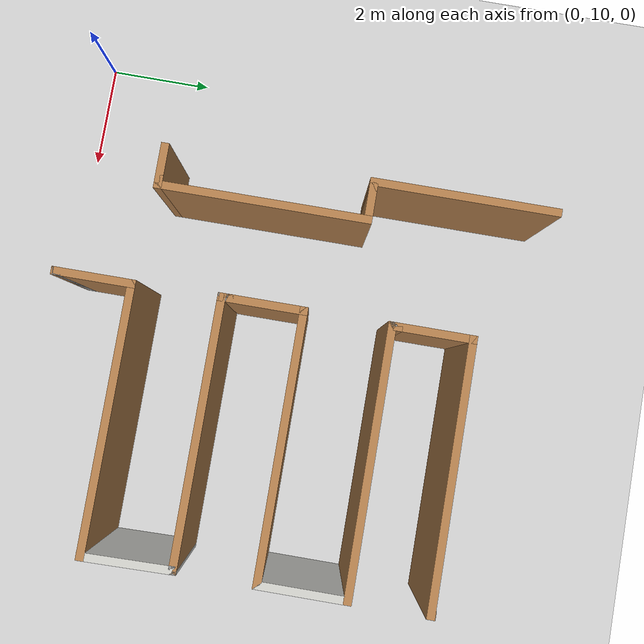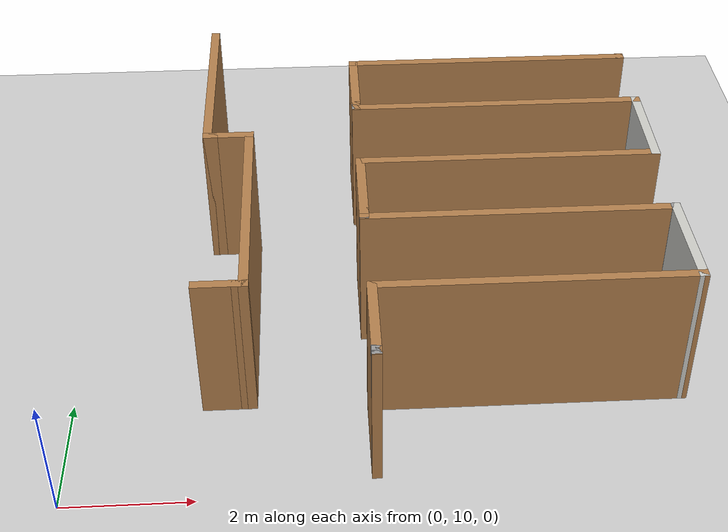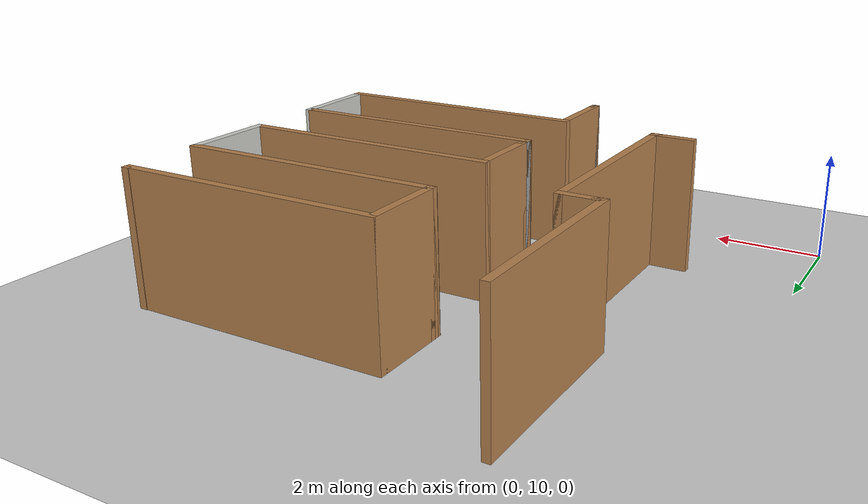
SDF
<sdf version="1.6">
 <world name="default">
  <model name="ground_plane">
   <static>1</static>
   <link name="link">
    <collision name="collision">
     <geometry><plane><normal>0 0 1</normal><size>100 100</size></plane></geometry>
     <surface>
      <contact><collide_bitmask>65535</collide_bitmask></contact>
      <friction><ode><mu>100</mu><mu2>50</mu2></ode></friction>
     </surface>
    </collision>
    <visual name="visual">
     <cast_shadows>0</cast_shadows>
     <geometry><plane><normal>0 0 1</normal><size>100 100</size></plane></geometry>
     <material>
      <script><uri>file://media/materials/scripts/gazebo.material</uri><name>Gazebo/Grey</name></script>
     </material>
    </visual>
   </link>
  </model>
  <model name="ecst_lab_v2">
   <pose>2.38151 7.60499 0 0 -0 -1.57079</pose>
   <link name="Wall_1">
    <collision name="Wall_1_Collision">
     <geometry><box><size>5 0.15 2.5</size></box></geometry>
     <pose>0 0 1.25 0 -0 0</pose>
    </collision>
    <visual name="Wall_1_Visual">
     <pose>0 0 1.25 0 -0 0</pose>
     <geometry><box><size>5 0.15 2.5</size></box></geometry>
     <material>
      <script><uri>file://media/materials/scripts/gazebo.material</uri><name>Gazebo/Wood</name></script>
      <ambient>1 1 1 1</ambient>
     </material>
     <meta><layer>0</layer></meta>
    </visual>
    <pose>-4.16301 4.67727 0 0 -0 -1.5708</pose>
   </link>
   <link name="Wall_117">
    <collision name="Wall_117_Collision">
     <geometry><box><size>0.16 0.15 2.5</size></box></geometry>
     <pose>0 0 1.25 0 -0 0</pose>
    </collision>
    <visual name="Wall_117_Visual">
     <pose>0 0 1.25 0 -0 0</pose>
     <geometry><box><size>0.16 0.15 2.5</size></box></geometry>
     <material>
      <script><uri>file://media/materials/scripts/gazebo.material</uri><name>Gazebo/Wood</name></script>
      <ambient>1 1 1 1</ambient>
     </material>
     <meta><layer>0</layer></meta>
    </visual>
    <pose>-10.3485 7.06822 0 0 -0 0</pose>
   </link>
   <link name="Wall_118">
    <collision name="Wall_118_Collision">
     <geometry><box><size>5 0.15 2.5</size></box></geometry>
     <pose>0 0 1.25 0 -0 0</pose>
    </collision>
    <visual name="Wall_118_Visual">
     <pose>0 0 1.25 0 -0 0</pose>
     <geometry><box><size>5 0.15 2.5</size></box></geometry>
     <material>
      <script><uri>file://media/materials/scripts/gazebo.material</uri><name>Gazebo/Wood</name></script>
      <ambient>1 1 1 1</ambient>
     </material>
     <meta><layer>0</layer></meta>
    </visual>
    <pose>-10.3435 4.64322 0 0 -0 -1.5708</pose>
   </link>
   <link name="Wall_119">
    <collision name="Wall_119_Collision">
     <geometry><box><size>1.5 0.15 2.5</size></box></geometry>
     <pose>0 0 1.25 0 -0 0</pose>
    </collision>
    <visual name="Wall_119_Visual">
     <pose>0 0 1.25 0 -0 0</pose>
     <geometry><box><size>1.5 0.15 2.5</size></box></geometry>
     <material>
      <script><uri>file://media/materials/scripts/gazebo.material</uri><name>Gazebo/Wood</name></script>
      <ambient>1 1 1 1</ambient>
     </material>
     <meta><layer>0</layer></meta>
    </visual>
    <pose>-9.6685 2.21822 0 0 -0 0</pose>
   </link>
   <link name="Wall_120">
    <collision name="Wall_120_Collision">
     <geometry><box><size>0.25 0.15 2.5</size></box></geometry>
     <pose>0 0 1.25 0 -0 0</pose>
    </collision>
    <visual name="Wall_120_Visual">
     <pose>0 0 1.25 0 -0 0</pose>
     <geometry><box><size>0.25 0.15 2.5</size></box></geometry>
     <material>
      <script><uri>file://media/materials/scripts/gazebo.material</uri><name>Gazebo/Wood</name></script>
      <ambient>1 1 1 1</ambient>
     </material>
     <meta><layer>0</layer></meta>
    </visual>
    <pose>-8.9435 2.21822 0 0 -0 0</pose>
   </link>
   <link name="Wall_121">
    <collision name="Wall_121_Collision">
     <geometry><box><size>0.15 0.15 2.5</size></box></geometry>
     <pose>0 0 1.25 0 -0 0</pose>
    </collision>
    <visual name="Wall_121_Visual">
     <pose>0 0 1.25 0 -0 0</pose>
     <geometry><box><size>0.15 0.15 2.5</size></box></geometry>
     <material>
      <script><uri>file://media/materials/scripts/gazebo.material</uri><name>Gazebo/Grey</name></script>
      <ambient>1 1 1 1</ambient>
     </material>
     <meta><layer>0</layer></meta>
    </visual>
    <pose>-8.8935 2.21822 0 0 -0 0</pose>
   </link>
   <link name="Wall_122">
    <collision name="Wall_122_Collision">
     <geometry><box><size>0.16 0.15 2.5</size></box></geometry>
     <pose>0 0 1.25 0 -0 0</pose>
    </collision>
    <visual name="Wall_122_Visual">
     <pose>0 0 1.25 0 -0 0</pose>
     <geometry><box><size>0.16 0.15 2.5</size></box></geometry>
     <material>
      <script><uri>file://media/materials/scripts/gazebo.material</uri><name>Gazebo/Wood</name></script>
      <ambient>1 1 1 1</ambient>
     </material>
     <meta><layer>0</layer></meta>
    </visual>
    <pose>-8.8885 2.21822 0 0 -0 0</pose>
   </link>
   <link name="Wall_123">
    <collision name="Wall_123_Collision">
     <geometry><box><size>5 0.15 2.5</size></box></geometry>
     <pose>0 0 1.25 0 -0 0</pose>
    </collision>
    <visual name="Wall_123_Visual">
     <pose>0 0 1.25 0 -0 0</pose>
     <geometry><box><size>5 0.15 2.5</size></box></geometry>
     <material>
      <script><uri>file://media/materials/scripts/gazebo.material</uri><name>Gazebo/Wood</name></script>
      <ambient>1 1 1 1</ambient>
     </material>
     <meta><layer>0</layer></meta>
    </visual>
    <pose>-8.8835 4.64322 0 0 -0 1.5708</pose>
   </link>
   <link name="Wall_124">
    <collision name="Wall_124_Collision">
     <geometry><box><size>1.75 0.15 2.5</size></box></geometry>
     <pose>0 0 1.25 0 -0 0</pose>
    </collision>
    <visual name="Wall_124_Visual">
     <pose>0 0 1.25 0 -0 0</pose>
     <geometry><box><size>1.75 0.15 2.5</size></box></geometry>
     <material>
      <script><uri>file://media/materials/scripts/gazebo.material</uri><name>Gazebo/CeilingTiled</name></script>
      <ambient>1 1 1 1</ambient>
     </material>
     <meta><layer>0</layer></meta>
    </visual>
    <pose>-8.0835 7.06822 0 0 -0 0</pose>
   </link>
   <link name="Wall_125">
    <collision name="Wall_125_Collision">
     <geometry><box><size>5 0.15 2.5</size></box></geometry>
     <pose>0 0 1.25 0 -0 0</pose>
    </collision>
    <visual name="Wall_125_Visual">
     <pose>0 0 1.25 0 -0 0</pose>
     <geometry><box><size>5 0.15 2.5</size></box></geometry>
     <material>
      <script><uri>file://media/materials/scripts/gazebo.material</uri><name>Gazebo/Wood</name></script>
      <ambient>1 1 1 1</ambient>
     </material>
     <meta><layer>0</layer></meta>
    </visual>
    <pose>-7.2835 4.64322 0 0 -0 -1.5708</pose>
   </link>
   <link name="Wall_126">
    <collision name="Wall_126_Collision">
     <geometry><box><size>1.5 0.15 2.5</size></box></geometry>
     <pose>0 0 1.25 0 -0 0</pose>
    </collision>
    <visual name="Wall_126_Visual">
     <pose>0 0 1.25 0 -0 0</pose>
     <geometry><box><size>1.5 0.15 2.5</size></box></geometry>
     <material>
      <script><uri>file://media/materials/scripts/gazebo.material</uri><name>Gazebo/Wood</name></script>
      <ambient>1 1 1 1</ambient>
     </material>
     <meta><layer>0</layer></meta>
    </visual>
    <pose>-6.6085 2.21822 0 0 -0 0</pose>
   </link>
   <link name="Wall_127">
    <collision name="Wall_127_Collision">
     <geometry><box><size>0.25 0.15 2.5</size></box></geometry>
     <pose>0 0 1.25 0 -0 0</pose>
    </collision>
    <visual name="Wall_127_Visual">
     <pose>0 0 1.25 0 -0 0</pose>
     <geometry><box><size>0.25 0.15 2.5</size></box></geometry>
     <material>
      <script><uri>file://media/materials/scripts/gazebo.material</uri><name>Gazebo/Wood</name></script>
      <ambient>1 1 1 1</ambient>
     </material>
     <meta><layer>0</layer></meta>
    </visual>
    <pose>-5.8835 2.21822 0 0 -0 0</pose>
   </link>
   <link name="Wall_128">
    <collision name="Wall_128_Collision">
     <geometry><box><size>0.15 0.15 2.5</size></box></geometry>
     <pose>0 0 1.25 0 -0 0</pose>
    </collision>
    <visual name="Wall_128_Visual">
     <pose>0 0 1.25 0 -0 0</pose>
     <geometry><box><size>0.15 0.15 2.5</size></box></geometry>
     <material>
      <script><uri>file://media/materials/scripts/gazebo.material</uri><name>Gazebo/Grey</name></script>
      <ambient>1 1 1 1</ambient>
     </material>
     <meta><layer>0</layer></meta>
    </visual>
    <pose>-5.8335 2.21822 0 0 -0 0</pose>
   </link>
   <link name="Wall_129">
    <collision name="Wall_129_Collision">
     <geometry><box><size>0.16 0.15 2.5</size></box></geometry>
     <pose>0 0 1.25 0 -0 0</pose>
    </collision>
    <visual name="Wall_129_Visual">
     <pose>0 0 1.25 0 -0 0</pose>
     <geometry><box><size>0.16 0.15 2.5</size></box></geometry>
     <material>
      <script><uri>file://media/materials/scripts/gazebo.material</uri><name>Gazebo/Wood</name></script>
      <ambient>1 1 1 1</ambient>
     </material>
     <meta><layer>0</layer></meta>
    </visual>
    <pose>-5.8285 2.21822 0 0 -0 0</pose>
   </link>
   <link name="Wall_130">
    <collision name="Wall_130_Collision">
     <geometry><box><size>0.16 0.15 2.5</size></box></geometry>
     <pose>0 0 1.25 0 -0 0</pose>
    </collision>
    <visual name="Wall_130_Visual">
     <pose>0 0 1.25 0 -0 0</pose>
     <geometry><box><size>0.16 0.15 2.5</size></box></geometry>
     <material>
      <script><uri>file://media/materials/scripts/gazebo.material</uri><name>Gazebo/Grey</name></script>
      <ambient>1 1 1 1</ambient>
     </material>
     <meta><layer>0</layer></meta>
    </visual>
    <pose>-5.8185 2.21822 0 0 -0 0</pose>
   </link>
   <link name="Wall_131">
    <collision name="Wall_131_Collision">
     <geometry><box><size>0.16 0.15 2.5</size></box></geometry>
     <pose>0 0 1.25 0 -0 0</pose>
    </collision>
    <visual name="Wall_131_Visual">
     <pose>0 0 1.25 0 -0 0</pose>
     <geometry><box><size>0.16 0.15 2.5</size></box></geometry>
     <material>
      <script><uri>file://media/materials/scripts/gazebo.material</uri><name>Gazebo/Grey</name></script>
      <ambient>1 1 1 1</ambient>
     </material>
     <meta><layer>0</layer></meta>
    </visual>
    <pose>-5.8085 2.21822 0 0 -0 0</pose>
   </link>
   <link name="Wall_132">
    <collision name="Wall_132_Collision">
     <geometry><box><size>0.16 0.15 2.5</size></box></geometry>
     <pose>0 0 1.25 0 -0 0</pose>
    </collision>
    <visual name="Wall_132_Visual">
     <pose>0 0 1.25 0 -0 0</pose>
     <geometry><box><size>0.16 0.15 2.5</size></box></geometry>
     <material>
      <script><uri>file://media/materials/scripts/gazebo.material</uri><name>Gazebo/Wood</name></script>
      <ambient>1 1 1 1</ambient>
     </material>
     <meta><layer>0</layer></meta>
    </visual>
    <pose>-5.7985 2.21822 0 0 -0 0</pose>
   </link>
   <link name="Wall_133">
    <collision name="Wall_133_Collision">
     <geometry><box><size>5 0.15 2.5</size></box></geometry>
     <pose>0 0 1.25 0 -0 0</pose>
    </collision>
    <visual name="Wall_133_Visual">
     <pose>0 0 1.25 0 -0 0</pose>
     <geometry><box><size>5 0.15 2.5</size></box></geometry>
     <material>
      <script><uri>file://media/materials/scripts/gazebo.material</uri><name>Gazebo/Wood</name></script>
      <ambient>1 1 1 1</ambient>
     </material>
     <meta><layer>0</layer></meta>
    </visual>
    <pose>-5.7935 4.64322 0 0 -0 1.5708</pose>
   </link>
   <link name="Wall_134">
    <collision name="Wall_134_Collision">
     <geometry><box><size>0.15 0.15 2.5</size></box></geometry>
     <pose>0 0 1.25 0 -0 0</pose>
    </collision>
    <visual name="Wall_134_Visual">
     <pose>0 0 1.25 0 -0 0</pose>
     <geometry><box><size>0.15 0.15 2.5</size></box></geometry>
     <material>
      <script><uri>file://media/materials/scripts/gazebo.material</uri><name>Gazebo/Grey</name></script>
      <ambient>1 1 1 1</ambient>
     </material>
     <meta><layer>0</layer></meta>
    </visual>
    <pose>-5.7935 7.06822 0 0 -0 0</pose>
   </link>
   <link name="Wall_135">
    <collision name="Wall_135_Collision">
     <geometry><box><size>0.15 0.15 2.5</size></box></geometry>
     <pose>0 0 1.25 0 -0 0</pose>
    </collision>
    <visual name="Wall_135_Visual">
     <pose>0 0 1.25 0 -0 0</pose>
     <geometry><box><size>0.15 0.15 2.5</size></box></geometry>
     <material>
      <script><uri>file://media/materials/scripts/gazebo.material</uri><name>Gazebo/Grey</name></script>
      <ambient>1 1 1 1</ambient>
     </material>
     <meta><layer>0</layer></meta>
    </visual>
    <pose>-5.7935 7.06822 0 0 -0 0</pose>
   </link>
   <link name="Wall_136">
    <collision name="Wall_136_Collision">
     <geometry><box><size>0.15 0.15 2.5</size></box></geometry>
     <pose>0 0 1.25 0 -0 0</pose>
    </collision>
    <visual name="Wall_136_Visual">
     <pose>0 0 1.25 0 -0 0</pose>
     <geometry><box><size>0.15 0.15 2.5</size></box></geometry>
     <material>
      <script><uri>file://media/materials/scripts/gazebo.material</uri><name>Gazebo/Grey</name></script>
      <ambient>1 1 1 1</ambient>
     </material>
     <meta><layer>0</layer></meta>
    </visual>
    <pose>-5.7935 7.06822 0 0 -0 0</pose>
   </link>
   <link name="Wall_137">
    <collision name="Wall_137_Collision">
     <geometry><box><size>0.15 0.15 2.5</size></box></geometry>
     <pose>0 0 1.25 0 -0 0</pose>
    </collision>
    <visual name="Wall_137_Visual">
     <pose>0 0 1.25 0 -0 0</pose>
     <geometry><box><size>0.15 0.15 2.5</size></box></geometry>
     <material>
      <script><uri>file://media/materials/scripts/gazebo.material</uri><name>Gazebo/Grey</name></script>
      <ambient>1 1 1 1</ambient>
     </material>
     <meta><layer>0</layer></meta>
    </visual>
    <pose>-5.7935 7.06822 0 0 -0 0</pose>
   </link>
   <link name="Wall_138">
    <collision name="Wall_138_Collision">
     <geometry><box><size>1.78084 0.15 2.5</size></box></geometry>
     <pose>0 0 1.25 0 -0 0</pose>
    </collision>
    <visual name="Wall_138_Visual">
     <pose>0 0 1.25 0 -0 0</pose>
     <geometry><box><size>1.78084 0.15 2.5</size></box></geometry>
     <material>
      <script><uri>file://media/materials/scripts/gazebo.material</uri><name>Gazebo/CeilingTiled</name></script>
      <ambient>1 1 1 1</ambient>
     </material>
     <meta><layer>0</layer></meta>
    </visual>
    <pose>-4.97826 7.08524 0 0 -0 0.020886</pose>
   </link>
   <link name="Wall_2">
    <collision name="Wall_2_Collision">
     <geometry><box><size>1.5 0.15 2.5</size></box></geometry>
     <pose>0 0 1.25 0 -0 0</pose>
    </collision>
    <visual name="Wall_2_Visual">
     <pose>0 0 1.25 0 -0 0</pose>
     <geometry><box><size>1.5 0.15 2.5</size></box></geometry>
     <material>
      <script><uri>file://media/materials/scripts/gazebo.material</uri><name>Gazebo/Wood</name></script>
      <ambient>1 1 1 1</ambient>
     </material>
     <meta><layer>0</layer></meta>
    </visual>
    <pose>-3.48801 2.25228 0 0 -0 0</pose>
   </link>
   <link name="Wall_3">
    <collision name="Wall_3_Collision">
     <geometry><box><size>0.15 0.15 2.5</size></box></geometry>
     <pose>0 0 1.25 0 -0 0</pose>
    </collision>
    <visual name="Wall_3_Visual">
     <pose>0 0 1.25 0 -0 0</pose>
     <geometry><box><size>0.15 0.15 2.5</size></box></geometry>
     <material>
      <script><uri>file://media/materials/scripts/gazebo.material</uri><name>Gazebo/Grey</name></script>
      <ambient>1 1 1 1</ambient>
     </material>
     <meta><layer>0</layer></meta>
    </visual>
    <pose>-2.81301 2.25228 0 0 -0 0</pose>
   </link>
   <link name="Wall_4">
    <collision name="Wall_4_Collision">
     <geometry><box><size>0.15 0.15 2.5</size></box></geometry>
     <pose>0 0 1.25 0 -0 0</pose>
    </collision>
    <visual name="Wall_4_Visual">
     <pose>0 0 1.25 0 -0 0</pose>
     <geometry><box><size>0.15 0.15 2.5</size></box></geometry>
     <material>
      <script><uri>file://media/materials/scripts/gazebo.material</uri><name>Gazebo/Grey</name></script>
      <ambient>1 1 1 1</ambient>
     </material>
     <meta><layer>0</layer></meta>
    </visual>
    <pose>-2.81301 2.25228 0 0 -0 0</pose>
   </link>
   <link name="Wall_5">
    <collision name="Wall_5_Collision">
     <geometry><box><size>0.16 0.15 2.5</size></box></geometry>
     <pose>0 0 1.25 0 -0 0</pose>
    </collision>
    <visual name="Wall_5_Visual">
     <pose>0 0 1.25 0 -0 0</pose>
     <geometry><box><size>0.16 0.15 2.5</size></box></geometry>
     <material>
      <script><uri>file://media/materials/scripts/gazebo.material</uri><name>Gazebo/Grey</name></script>
      <ambient>1 1 1 1</ambient>
     </material>
     <meta><layer>0</layer></meta>
    </visual>
    <pose>-2.80801 2.25228 0 0 -0 0</pose>
   </link>
   <link name="Wall_6">
    <collision name="Wall_6_Collision">
     <geometry><box><size>0.16 0.15 2.5</size></box></geometry>
     <pose>0 0 1.25 0 -0 0</pose>
    </collision>
    <visual name="Wall_6_Visual">
     <pose>0 0 1.25 0 -0 0</pose>
     <geometry><box><size>0.16 0.15 2.5</size></box></geometry>
     <material>
      <script><uri>file://media/materials/scripts/gazebo.material</uri><name>Gazebo/Grey</name></script>
      <ambient>1 1 1 1</ambient>
     </material>
     <meta><layer>0</layer></meta>
    </visual>
    <pose>-2.79801 2.25228 0 0 -0 0</pose>
   </link>
   <link name="Wall_7">
    <collision name="Wall_7_Collision">
     <geometry><box><size>0.16 0.15 2.5</size></box></geometry>
     <pose>0 0 1.25 0 -0 0</pose>
    </collision>
    <visual name="Wall_7_Visual">
     <pose>0 0 1.25 0 -0 0</pose>
     <geometry><box><size>0.16 0.15 2.5</size></box></geometry>
     <material>
      <script><uri>file://media/materials/scripts/gazebo.material</uri><name>Gazebo/Grey</name></script>
      <ambient>1 1 1 1</ambient>
     </material>
     <meta><layer>0</layer></meta>
    </visual>
    <pose>-2.78801 2.25228 0 0 -0 0</pose>
   </link>
   <link name="Wall_76">
    <collision name="Wall_76_Collision">
     <geometry><box><size>0.75 0.15 2.5</size></box></geometry>
     <pose>0 0 1.25 0 -0 0</pose>
    </collision>
    <visual name="Wall_76_Visual">
     <pose>0 0 1.25 0 -0 0</pose>
     <geometry><box><size>0.75 0.15 2.5</size></box></geometry>
     <material>
      <script><uri>file://media/materials/scripts/gazebo.material</uri><name>Gazebo/Wood</name></script>
      <ambient>1 1 1 1</ambient>
     </material>
     <meta><layer>0</layer></meta>
    </visual>
    <pose>-4.29657 -0.002274 0 0 -0 1.5708</pose>
   </link>
   <link name="Wall_77">
    <collision name="Wall_77_Collision">
     <geometry><box><size>0.25 0.15 2.5</size></box></geometry>
     <pose>0 0 1.25 0 -0 0</pose>
    </collision>
    <visual name="Wall_77_Visual">
     <pose>0 0 1.25 0 -0 0</pose>
     <geometry><box><size>0.25 0.15 2.5</size></box></geometry>
     <material>
      <script><uri>file://media/materials/scripts/gazebo.material</uri><name>Gazebo/Wood</name></script>
      <ambient>1 1 1 1</ambient>
     </material>
     <meta><layer>0</layer></meta>
    </visual>
    <pose>-4.29657 0.347726 0 0 -0 1.5708</pose>
   </link>
   <link name="Wall_78">
    <collision name="Wall_78_Collision">
     <geometry><box><size>4 0.15 2.5</size></box></geometry>
     <pose>0 0 1.25 0 -0 0</pose>
    </collision>
    <visual name="Wall_78_Visual">
     <pose>0 0 1.25 0 -0 0</pose>
     <geometry><box><size>4 0.15 2.5</size></box></geometry>
     <material>
      <script><uri>file://media/materials/scripts/gazebo.material</uri><name>Gazebo/Wood</name></script>
      <ambient>1 1 1 1</ambient>
     </material>
     <meta><layer>0</layer></meta>
    </visual>
    <pose>-6.22157 0.397726 0 0 -0 3.14159</pose>
   </link>
   <link name="Wall_79">
    <collision name="Wall_79_Collision">
     <geometry><box><size>0.75 0.15 2.5</size></box></geometry>
     <pose>0 0 1.25 0 -0 0</pose>
    </collision>
    <visual name="Wall_79_Visual">
     <pose>0 0 1.25 0 -0 0</pose>
     <geometry><box><size>0.75 0.15 2.5</size></box></geometry>
     <material>
      <script><uri>file://media/materials/scripts/gazebo.material</uri><name>Gazebo/Wood</name></script>
      <ambient>1 1 1 1</ambient>
     </material>
     <meta><layer>0</layer></meta>
    </visual>
    <pose>-8.14657 0.097726 0 0 -0 -1.5708</pose>
   </link>
   <link name="Wall_8">
    <collision name="Wall_8_Collision">
     <geometry><box><size>0.16 0.15 2.5</size></box></geometry>
     <pose>0 0 1.25 0 -0 0</pose>
    </collision>
    <visual name="Wall_8_Visual">
     <pose>0 0 1.25 0 -0 0</pose>
     <geometry><box><size>0.16 0.15 2.5</size></box></geometry>
     <material>
      <script><uri>file://media/materials/scripts/gazebo.material</uri><name>Gazebo/Wood</name></script>
      <ambient>1 1 1 1</ambient>
     </material>
     <meta><layer>0</layer></meta>
    </visual>
    <pose>-2.77801 2.25228 0 0 -0 0</pose>
   </link>
   <link name="Wall_80">
    <collision name="Wall_80_Collision">
     <geometry><box><size>0.25 0.15 2.5</size></box></geometry>
     <pose>0 0 1.25 0 -0 0</pose>
    </collision>
    <visual name="Wall_80_Visual">
     <pose>0 0 1.25 0 -0 0</pose>
     <geometry><box><size>0.25 0.15 2.5</size></box></geometry>
     <material>
      <script><uri>file://media/materials/scripts/gazebo.material</uri><name>Gazebo/Wood</name></script>
      <ambient>1 1 1 1</ambient>
     </material>
     <meta><layer>0</layer></meta>
    </visual>
    <pose>-8.14657 -0.252274 0 0 -0 -1.5708</pose>
   </link>
   <link name="Wall_81">
    <collision name="Wall_81_Collision">
     <geometry><box><size>3.5 0.15 2.5</size></box></geometry>
     <pose>0 0 1.25 0 -0 0</pose>
    </collision>
    <visual name="Wall_81_Visual">
     <pose>0 0 1.25 0 -0 0</pose>
     <geometry><box><size>3.5 0.15 2.5</size></box></geometry>
     <material>
      <script><uri>file://media/materials/scripts/gazebo.material</uri><name>Gazebo/Wood</name></script>
      <ambient>1 1 1 1</ambient>
     </material>
     <meta><layer>0</layer></meta>
    </visual>
    <pose>-9.82157 -0.302274 0 0 -0 3.14159</pose>
   </link>
   <static>1</static>
  </model>
 </world>
</sdf>
